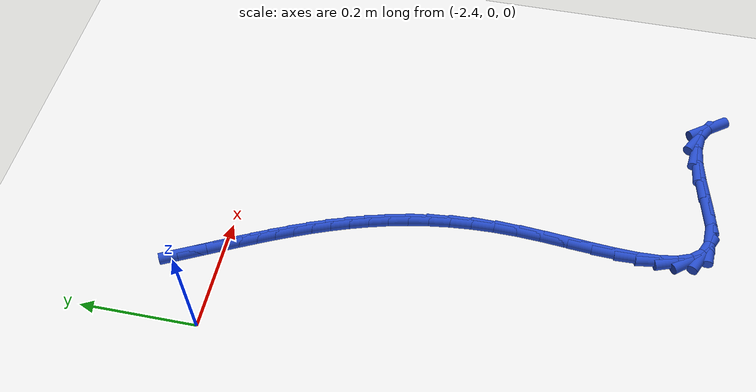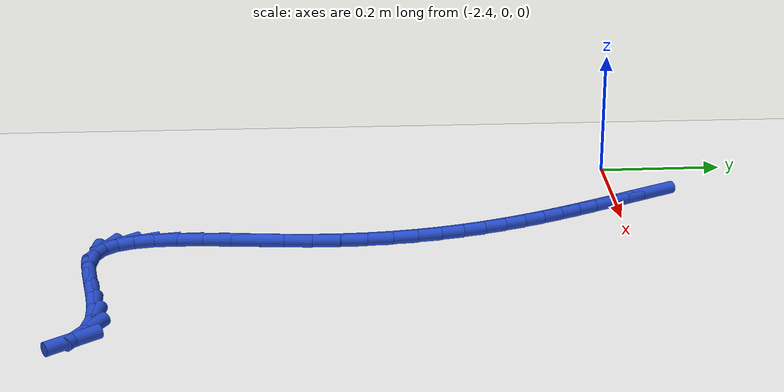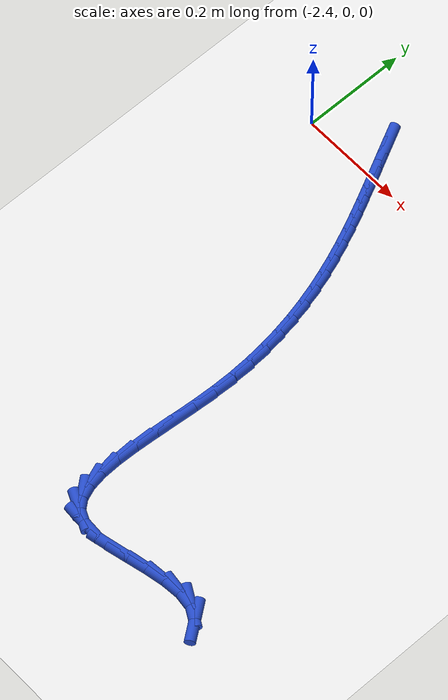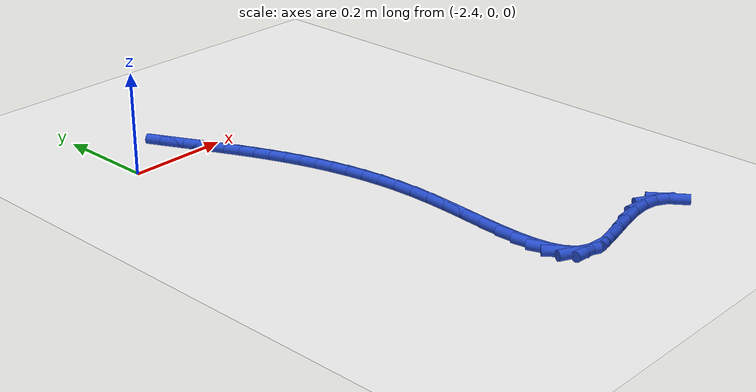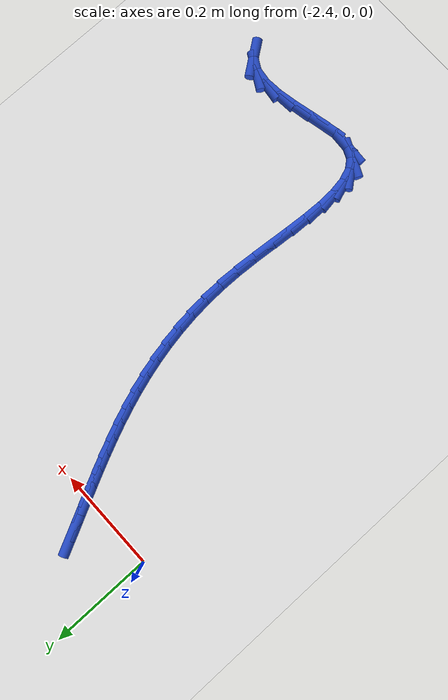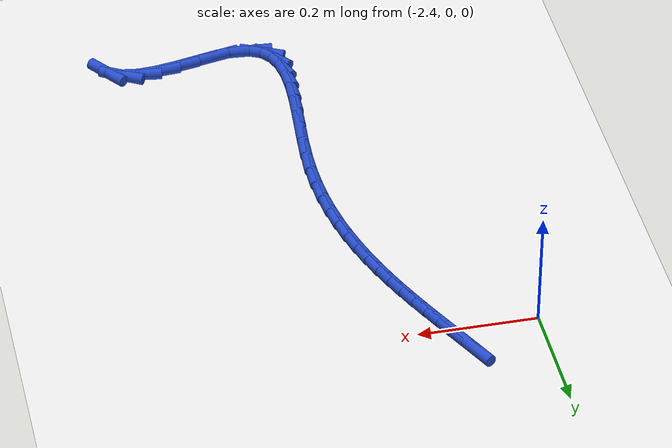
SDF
<sdf version="1.6">
 <world name="default">
  <model name="ground_plane">
   <static>1</static>
   <link name="link">
    <collision name="collision">
     <geometry><plane><normal>0 0 1</normal><size>100 100</size></plane></geometry>
     <surface><friction><ode><mu>100</mu><mu2>50</mu2></ode></friction></surface>
    </collision>
    <visual name="visual">
     <cast_shadows>0</cast_shadows>
     <geometry><plane><normal>0 0 1</normal><size>100 100</size></plane></geometry>
     <material>
      <script><uri>file://media/materials/scripts/gazebo.material</uri><name>Gazebo/WhiteGlow</name></script>
     </material>
    </visual>
   </link>
  </model>
  <model name="line">
   <link name="link_143">
    <pose>-2.278590239907282 0.0625567301392548 0.01 0 1.57 -1.1114257566287715</pose>
    <collision name="collision">
     <geometry><cylinder><radius>0.01</radius><length>0.08</length></cylinder></geometry>
    </collision>
    <visual name="visual">
     <material>
      <script><name>Gazebo/Blue</name><uri>file://media/materials/scripts/gazebo.material</uri></script>
     </material>
     <geometry><cylinder><radius>0.01</radius><length>0.08</length></cylinder></geometry>
    </visual>
   </link>
   <link name="link_144">
    <pose>-2.264965303416233 0.03501296951494118 0.01 0 1.57 -1.1083420421180534</pose>
    <collision name="collision">
     <geometry><cylinder><radius>0.01</radius><length>0.08</length></cylinder></geometry>
    </collision>
    <visual name="visual">
     <material>
      <script><name>Gazebo/Blue</name><uri>file://media/materials/scripts/gazebo.material</uri></script>
     </material>
     <geometry><cylinder><radius>0.01</radius><length>0.08</length></cylinder></geometry>
    </visual>
   </link>
   <link name="link_145">
    <pose>-2.2512091809340555 0.007418450574652201 0.01 0 1.57 -1.1106269768107326</pose>
    <collision name="collision">
     <geometry><cylinder><radius>0.01</radius><length>0.08</length></cylinder></geometry>
    </collision>
    <visual name="visual">
     <material>
      <script><name>Gazebo/Blue</name><uri>file://media/materials/scripts/gazebo.material</uri></script>
     </material>
     <geometry><cylinder><radius>0.01</radius><length>0.08</length></cylinder></geometry>
    </visual>
   </link>
   <link name="link_146">
    <pose>-2.2374566924696535 -0.020327376388060543 0.01 0 1.57 -1.1182044720026802</pose>
    <collision name="collision">
     <geometry><cylinder><radius>0.01</radius><length>0.08</length></cylinder></geometry>
    </collision>
    <visual name="visual">
     <material>
      <script><name>Gazebo/Blue</name><uri>file://media/materials/scripts/gazebo.material</uri></script>
     </material>
     <geometry><cylinder><radius>0.01</radius><length>0.08</length></cylinder></geometry>
    </visual>
   </link>
   <link name="link_147">
    <pose>-2.2238426580319337 -0.048325061079642885 0.01 0 1.57 -1.1309670113062336</pose>
    <collision name="collision">
     <geometry><cylinder><radius>0.01</radius><length>0.08</length></cylinder></geometry>
    </collision>
    <visual name="visual">
     <material>
      <script><name>Gazebo/Blue</name><uri>file://media/materials/scripts/gazebo.material</uri></script>
     </material>
     <geometry><cylinder><radius>0.01</radius><length>0.08</length></cylinder></geometry>
    </visual>
   </link>
   <link name="link_148">
    <pose>-2.210501897629799 -0.07667515320654311 0.01 0 1.57 -1.1487715031278123</pose>
    <collision name="collision">
     <geometry><cylinder><radius>0.01</radius><length>0.08</length></cylinder></geometry>
    </collision>
    <visual name="visual">
     <material>
      <script><name>Gazebo/Blue</name><uri>file://media/materials/scripts/gazebo.material</uri></script>
     </material>
     <geometry><cylinder><radius>0.01</radius><length>0.08</length></cylinder></geometry>
    </visual>
   </link>
   <link name="link_149">
    <pose>-2.1975692312721553 -0.10547820247520875 0.01 0 1.57 -1.1714322751672368</pose>
    <collision name="collision">
     <geometry><cylinder><radius>0.01</radius><length>0.08</length></cylinder></geometry>
    </collision>
    <visual name="visual">
     <material>
      <script><name>Gazebo/Blue</name><uri>file://media/materials/scripts/gazebo.material</uri></script>
     </material>
     <geometry><cylinder><radius>0.01</radius><length>0.08</length></cylinder></geometry>
    </visual>
   </link>
   <link name="link_150">
    <pose>-2.185179478967908 -0.13483475859208735 0.01 0 1.57 -1.198712384602299</pose>
    <collision name="collision">
     <geometry><cylinder><radius>0.01</radius><length>0.08</length></cylinder></geometry>
    </collision>
    <visual name="visual">
     <material>
      <script><name>Gazebo/Blue</name><uri>file://media/materials/scripts/gazebo.material</uri></script>
     </material>
     <geometry><cylinder><radius>0.01</radius><length>0.08</length></cylinder></geometry>
    </visual>
   </link>
   <link name="link_151">
    <pose>-2.1734674607259605 -0.16484537126362628 0.01 0 1.57 -1.2303147755125587</pose>
    <collision name="collision">
     <geometry><cylinder><radius>0.01</radius><length>0.08</length></cylinder></geometry>
    </collision>
    <visual name="visual">
     <material>
      <script><name>Gazebo/Blue</name><uri>file://media/materials/scripts/gazebo.material</uri></script>
     </material>
     <geometry><cylinder><radius>0.01</radius><length>0.08</length></cylinder></geometry>
    </visual>
   </link>
   <link name="link_152">
    <pose>-2.1625679965552185 -0.1956105901962732 0.01 0 1.57 -1.2658751205042962</pose>
    <collision name="collision">
     <geometry><cylinder><radius>0.01</radius><length>0.08</length></cylinder></geometry>
    </collision>
    <visual name="visual">
     <material>
      <script><name>Gazebo/Blue</name><uri>file://media/materials/scripts/gazebo.material</uri></script>
     </material>
     <geometry><cylinder><radius>0.01</radius><length>0.08</length></cylinder></geometry>
    </visual>
   </link>
   <link name="link_153">
    <pose>-2.1526159064645873 -0.22723096509647545 0.01 0 1.57 -1.3049583239204317</pose>
    <collision name="collision">
     <geometry><cylinder><radius>0.01</radius><length>0.08</length></cylinder></geometry>
    </collision>
    <visual name="visual">
     <material>
      <script><name>Gazebo/Blue</name><uri>file://media/materials/scripts/gazebo.material</uri></script>
     </material>
     <geometry><cylinder><radius>0.01</radius><length>0.08</length></cylinder></geometry>
    </visual>
   </link>
   <link name="link_154">
    <pose>-2.1437460104629715 -0.2598070456706807 0.01 0 1.57 -1.3470605013203965</pose>
    <collision name="collision">
     <geometry><cylinder><radius>0.01</radius><length>0.08</length></cylinder></geometry>
    </collision>
    <visual name="visual">
     <material>
      <script><name>Gazebo/Blue</name><uri>file://media/materials/scripts/gazebo.material</uri></script>
     </material>
     <geometry><cylinder><radius>0.01</radius><length>0.08</length></cylinder></geometry>
    </visual>
   </link>
   <link name="link_155">
    <pose>-2.136093128559275 -0.29343938162533734 0.01 0 1.57 -1.3916176764526174</pose>
    <collision name="collision">
     <geometry><cylinder><radius>0.01</radius><length>0.08</length></cylinder></geometry>
    </collision>
    <visual name="visual">
     <material>
      <script><name>Gazebo/Blue</name><uri>file://media/materials/scripts/gazebo.material</uri></script>
     </material>
     <geometry><cylinder><radius>0.01</radius><length>0.08</length></cylinder></geometry>
    </visual>
   </link>
   <link name="link_156">
    <pose>-2.1297920807624044 -0.328228522666891 0.01 0 1.57 -1.4380214478000217</pose>
    <collision name="collision">
     <geometry><cylinder><radius>0.01</radius><length>0.08</length></cylinder></geometry>
    </collision>
    <visual name="visual">
     <material>
      <script><name>Gazebo/Blue</name><uri>file://media/materials/scripts/gazebo.material</uri></script>
     </material>
     <geometry><cylinder><radius>0.01</radius><length>0.08</length></cylinder></geometry>
    </visual>
   </link>
   <link name="link_157">
    <pose>-2.124977687081264 -0.36427501850179 0.01 0 1.57 -1.4856406236614612</pose>
    <collision name="collision">
     <geometry><cylinder><radius>0.01</radius><length>0.08</length></cylinder></geometry>
    </collision>
    <visual name="visual">
     <material>
      <script><name>Gazebo/Blue</name><uri>file://media/materials/scripts/gazebo.material</uri></script>
     </material>
     <geometry><cylinder><radius>0.01</radius><length>0.08</length></cylinder></geometry>
    </visual>
   </link>
   <link name="link_158">
    <pose>-2.1217847675247588 -0.40167941883648195 0.01 0 1.57 -1.5338466075598778</pose>
    <collision name="collision">
     <geometry><cylinder><radius>0.01</radius><length>0.08</length></cylinder></geometry>
    </collision>
    <visual name="visual">
     <material>
      <script><name>Gazebo/Blue</name><uri>file://media/materials/scripts/gazebo.material</uri></script>
     </material>
     <geometry><cylinder><radius>0.01</radius><length>0.08</length></cylinder></geometry>
    </visual>
   </link>
   <link name="link_159">
    <pose>-2.120348142101793 -0.4405422733774142 0.01 0 1.57 1.559553163163712</pose>
    <collision name="collision">
     <geometry><cylinder><radius>0.01</radius><length>0.08</length></cylinder></geometry>
    </collision>
    <visual name="visual">
     <material>
      <script><name>Gazebo/Blue</name><uri>file://media/materials/scripts/gazebo.material</uri></script>
     </material>
     <geometry><cylinder><radius>0.01</radius><length>0.08</length></cylinder></geometry>
    </visual>
   </link>
   <link name="link_160">
    <pose>-2.120802630821272 -0.4809641318310346 0.01 0 1.57 1.5153031885660968</pose>
    <collision name="collision">
     <geometry><cylinder><radius>0.01</radius><length>0.08</length></cylinder></geometry>
    </collision>
    <visual name="visual">
     <material>
      <script><name>Gazebo/Blue</name><uri>file://media/materials/scripts/gazebo.material</uri></script>
     </material>
     <geometry><cylinder><radius>0.01</radius><length>0.08</length></cylinder></geometry>
    </visual>
   </link>
   <link name="link_161">
    <pose>-2.123131049653291 -0.5228797326153359 0.01 0 1.57 1.489238982142643</pose>
    <collision name="collision">
     <geometry><cylinder><radius>0.01</radius><length>0.08</length></cylinder></geometry>
    </collision>
    <visual name="visual">
     <material>
      <script><name>Gazebo/Blue</name><uri>file://media/materials/scripts/gazebo.material</uri></script>
     </material>
     <geometry><cylinder><radius>0.01</radius><length>0.08</length></cylinder></geometry>
    </visual>
   </link>
   <link name="link_162">
    <pose>-2.126611062930489 -0.565454610234534 0.01 0 1.57 1.483178106668067</pose>
    <collision name="collision">
     <geometry><cylinder><radius>0.01</radius><length>0.08</length></cylinder></geometry>
    </collision>
    <visual name="visual">
     <material>
      <script><name>Gazebo/Blue</name><uri>file://media/materials/scripts/gazebo.material</uri></script>
     </material>
     <geometry><cylinder><radius>0.01</radius><length>0.08</length></cylinder></geometry>
    </visual>
   </link>
   <link name="link_163">
    <pose>-2.130316004676132 -0.6076314085898546 0.01 0 1.57 1.497179988746841</pose>
    <collision name="collision">
     <geometry><cylinder><radius>0.01</radius><length>0.08</length></cylinder></geometry>
    </collision>
    <visual name="visual">
     <material>
      <script><name>Gazebo/Blue</name><uri>file://media/materials/scripts/gazebo.material</uri></script>
     </material>
     <geometry><cylinder><radius>0.01</radius><length>0.08</length></cylinder></geometry>
    </visual>
   </link>
   <link name="link_164">
    <pose>-2.133319187670302 -0.6483527484097206 0.01 0 1.57 1.534831968386538</pose>
    <collision name="collision">
     <geometry><cylinder><radius>0.01</radius><length>0.08</length></cylinder></geometry>
    </collision>
    <visual name="visual">
     <material>
      <script><name>Gazebo/Blue</name><uri>file://media/materials/scripts/gazebo.material</uri></script>
     </material>
     <geometry><cylinder><radius>0.01</radius><length>0.08</length></cylinder></geometry>
    </visual>
   </link>
   <link name="link_165">
    <pose>-2.1346939246930816 -0.6865612504225501 0.01 0 1.57 -1.536731719981497</pose>
    <collision name="collision">
     <geometry><cylinder><radius>0.01</radius><length>0.08</length></cylinder></geometry>
    </collision>
    <visual name="visual">
     <material>
      <script><name>Gazebo/Blue</name><uri>file://media/materials/scripts/gazebo.material</uri></script>
     </material>
     <geometry><cylinder><radius>0.01</radius><length>0.08</length></cylinder></geometry>
    </visual>
   </link>
   <link name="link_166">
    <pose>-2.133513528524553 -0.7211995353567667 0.01 0 1.57 -1.4166764307137034</pose>
    <collision name="collision">
     <geometry><cylinder><radius>0.01</radius><length>0.08</length></cylinder></geometry>
    </collision>
    <visual name="visual">
     <material>
      <script><name>Gazebo/Blue</name><uri>file://media/materials/scripts/gazebo.material</uri></script>
     </material>
     <geometry><cylinder><radius>0.01</radius><length>0.08</length></cylinder></geometry>
    </visual>
   </link>
   <link name="link_167">
    <pose>-2.1288513119447963 -0.751210223940791 0.01 0 1.57 -1.2138800820324434</pose>
    <collision name="collision">
     <geometry><cylinder><radius>0.01</radius><length>0.08</length></cylinder></geometry>
    </collision>
    <visual name="visual">
     <material>
      <script><name>Gazebo/Blue</name><uri>file://media/materials/scripts/gazebo.material</uri></script>
     </material>
     <geometry><cylinder><radius>0.01</radius><length>0.08</length></cylinder></geometry>
    </visual>
   </link>
   <link name="link_168">
    <pose>-2.119780587733895 -0.7755359369030442 0.01 0 1.57 -0.8844016755477976</pose>
    <collision name="collision">
     <geometry><cylinder><radius>0.01</radius><length>0.08</length></cylinder></geometry>
    </collision>
    <visual name="visual">
     <material>
      <script><name>Gazebo/Blue</name><uri>file://media/materials/scripts/gazebo.material</uri></script>
     </material>
     <geometry><cylinder><radius>0.01</radius><length>0.08</length></cylinder></geometry>
    </visual>
   </link>
   <link name="link_169">
    <pose>-2.1053746686719297 -0.7931192949719478 0.01 0 1.57 -0.44213316985912454</pose>
    <collision name="collision">
     <geometry><cylinder><radius>0.01</radius><length>0.08</length></cylinder></geometry>
    </collision>
    <visual name="visual">
     <material>
      <script><name>Gazebo/Blue</name><uri>file://media/materials/scripts/gazebo.material</uri></script>
     </material>
     <geometry><cylinder><radius>0.01</radius><length>0.08</length></cylinder></geometry>
    </visual>
   </link>
   <link name="link_170">
    <pose>-2.0847070314598732 -0.8029031292415896 0.01 0 1.57 -0.06101656570879385</pose>
    <collision name="collision">
     <geometry><cylinder><radius>0.01</radius><length>0.08</length></cylinder></geometry>
    </collision>
    <visual name="visual">
     <material>
      <script><name>Gazebo/Blue</name><uri>file://media/materials/scripts/gazebo.material</uri></script>
     </material>
     <geometry><cylinder><radius>0.01</radius><length>0.08</length></cylinder></geometry>
    </visual>
   </link>
   <link name="link_172">
    <pose>-2.0250533086546443 -0.8001986565087408 0.01 0 1.57 0.21703538136657963</pose>
    <collision name="collision">
     <geometry><cylinder><radius>0.01</radius><length>0.08</length></cylinder></geometry>
    </collision>
    <visual name="visual">
     <material>
      <script><name>Gazebo/Blue</name><uri>file://media/materials/scripts/gazebo.material</uri></script>
     </material>
     <geometry><cylinder><radius>0.01</radius><length>0.08</length></cylinder></geometry>
    </visual>
   </link>
   <link name="link_173">
    <pose>-1.9894805648106009 -0.7923545602665523 0.01 0 1.57 0.2330394366733693</pose>
    <collision name="collision">
     <geometry><cylinder><radius>0.01</radius><length>0.08</length></cylinder></geometry>
    </collision>
    <visual name="visual">
     <material>
      <script><name>Gazebo/Blue</name><uri>file://media/materials/scripts/gazebo.material</uri></script>
     </material>
     <geometry><cylinder><radius>0.01</radius><length>0.08</length></cylinder></geometry>
    </visual>
   </link>
   <link name="link_174">
    <pose>-1.952604730466908 -0.7836020174272453 0.01 0 1.57 0.1931447927627374</pose>
    <collision name="collision">
     <geometry><cylinder><radius>0.01</radius><length>0.08</length></cylinder></geometry>
    </collision>
    <visual name="visual">
     <material>
      <script><name>Gazebo/Blue</name><uri>file://media/materials/scripts/gazebo.material</uri></script>
     </material>
     <geometry><cylinder><radius>0.01</radius><length>0.08</length></cylinder></geometry>
    </visual>
   </link>
   <link name="link_175">
    <pose>-1.9163214289695398 -0.7765056229808631 0.01 0 1.57 0.0848861789494457</pose>
    <collision name="collision">
     <geometry><cylinder><radius>0.01</radius><length>0.08</length></cylinder></geometry>
    </collision>
    <visual name="visual">
     <material>
      <script><name>Gazebo/Blue</name><uri>file://media/materials/scripts/gazebo.material</uri></script>
     </material>
     <geometry><cylinder><radius>0.01</radius><length>0.08</length></cylinder></geometry>
    </visual>
   </link>
   <link name="link_176">
    <pose>-1.8825262836644716 -0.7736299719174485 0.01 0 1.57 -0.13215637441946826</pose>
    <collision name="collision">
     <geometry><cylinder><radius>0.01</radius><length>0.08</length></cylinder></geometry>
    </collision>
    <visual name="visual">
     <material>
      <script><name>Gazebo/Blue</name><uri>file://media/materials/scripts/gazebo.material</uri></script>
     </material>
     <geometry><cylinder><radius>0.01</radius><length>0.08</length></cylinder></geometry>
    </visual>
   </link>
   <link name="link_177">
    <pose>-1.8531149178976791 -0.7775396592270447 0.01 0 1.57 -0.5168076483606255</pose>
    <collision name="collision">
     <geometry><cylinder><radius>0.01</radius><length>0.08</length></cylinder></geometry>
    </collision>
    <visual name="visual">
     <material>
      <script><name>Gazebo/Blue</name><uri>file://media/materials/scripts/gazebo.material</uri></script>
     </material>
     <geometry><cylinder><radius>0.01</radius><length>0.08</length></cylinder></geometry>
    </visual>
   </link>
   <link name="link_178">
    <pose>-1.8299230572293146 -0.7907203046802894 0.01 0 1.57 -0.9390106646336402</pose>
    <collision name="collision">
     <geometry><cylinder><radius>0.01</radius><length>0.08</length></cylinder></geometry>
    </collision>
    <visual name="visual">
     <material>
      <script><name>Gazebo/Blue</name><uri>file://media/materials/scripts/gazebo.material</uri></script>
     </material>
     <geometry><cylinder><radius>0.01</radius><length>0.08</length></cylinder></geometry>
    </visual>
   </link>
  </model>
 </world>
</sdf>
